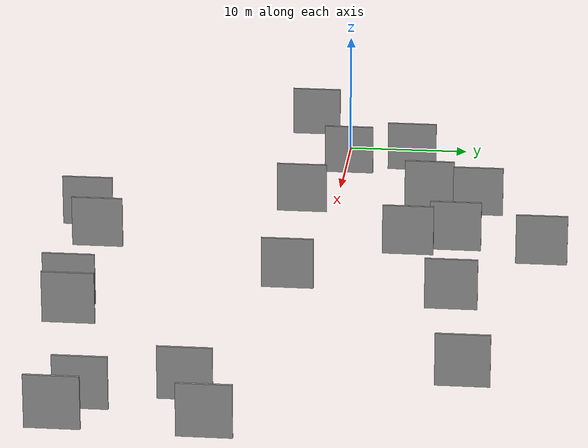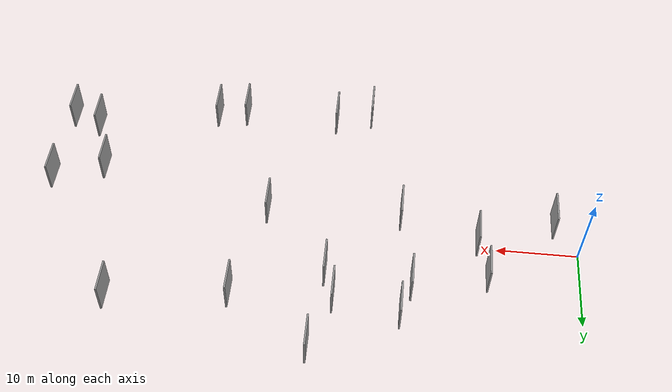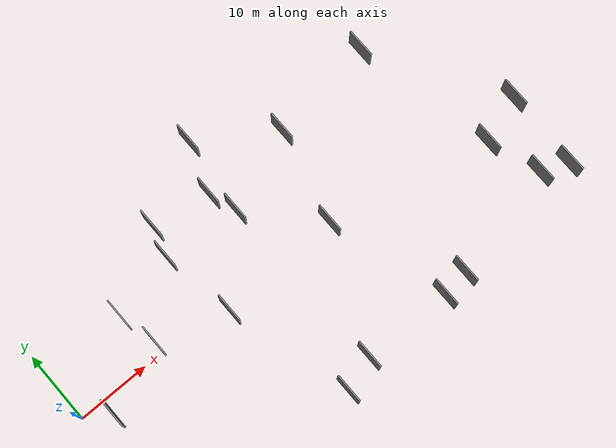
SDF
<sdf version="1.6">
 <world name="default">
  <scene>
   <sky><clouds><speed>12</speed></clouds></sky>
   <ambient>0.4 0.4 0.4 1</ambient>
   <background>0.7 0.7 0.7 1</background>
   <shadows>1</shadows>
  </scene>
  <gravity>0 0 -9.8066</gravity>
  <magnetic_field>6e-06 2.3e-05 -4.2e-05</magnetic_field>
  <physics default="0" name="default_physics" type="ode">
   <ode>
    <solver>
     <type>quick</type>
     <iters>10</iters>
     <sor>1.0</sor>
     <use_dynamic_moi_rescaling>0</use_dynamic_moi_rescaling>
    </solver>
    <constraints>
     <cfm>0</cfm>
     <erp>0.2</erp>
     <contact_max_correcting_vel>100</contact_max_correcting_vel>
     <contact_surface_layer>0.001</contact_surface_layer>
    </constraints>
   </ode>
   <max_step_size>0.004</max_step_size>
   <real_time_factor>1</real_time_factor>
   <real_time_update_rate>250</real_time_update_rate>
  </physics>
  <light name="sun" type="directional">
   <pose>0 0 10 0 0 0</pose>
   <diffuse>0.8 0.8 0.8 1</diffuse>
   <specular>0.2 0.2 0.2 1</specular>
   <attenuation>
    <range>1000</range>
    <constant>0.9</constant>
    <linear>0.01</linear>
    <quadratic>0.001</quadratic>
   </attenuation>
   <direction>-0.5 0.1 -0.9</direction>
  </light>
  <model name="grey_wall_1">
   <static>1</static>
   <pose>66.6942 -4.2332 2.5 0.000000 0.000000 1.570796</pose>
   <link name="link">
    <pose>0 0 2.00 0 0 0</pose>
    <collision name="collision"><geometry><box><size>4.00 0.2 4.00</size></box></geometry></collision>
    <visual name="visual">
     <cast_shadows>0</cast_shadows>
     <geometry><box><size>4.00 0.2 4.00</size></box></geometry>
     <material>
      <script>
       <uri>model://grey_wall/materials/scripts</uri>
       <uri>model://grey_wall/materials/textures</uri>
       <name>vrc/grey_wall</name>
      </script>
     </material>
    </visual>
   </link>
  </model>
  <model name="grey_wall_2">
   <static>1</static>
   <pose>11.5456 6.1222 2.5 0.000000 0.000000 1.570796</pose>
   <link name="link">
    <pose>0 0 2.00 0 0 0</pose>
    <collision name="collision"><geometry><box><size>4.00 0.2 4.00</size></box></geometry></collision>
    <visual name="visual">
     <cast_shadows>0</cast_shadows>
     <geometry><box><size>4.00 0.2 4.00</size></box></geometry>
     <material>
      <script>
       <uri>model://grey_wall/materials/scripts</uri>
       <uri>model://grey_wall/materials/textures</uri>
       <name>vrc/grey_wall</name>
      </script>
     </material>
    </visual>
   </link>
  </model>
  <model name="grey_wall_3">
   <static>1</static>
   <pose>62.7102 -13.5554 2.5 0.000000 0.000000 1.570796</pose>
   <link name="link">
    <pose>0 0 2.00 0 0 0</pose>
    <collision name="collision"><geometry><box><size>4.00 0.2 4.00</size></box></geometry></collision>
    <visual name="visual">
     <cast_shadows>0</cast_shadows>
     <geometry><box><size>4.00 0.2 4.00</size></box></geometry>
     <material>
      <script>
       <uri>model://grey_wall/materials/scripts</uri>
       <uri>model://grey_wall/materials/textures</uri>
       <name>vrc/grey_wall</name>
      </script>
     </material>
    </visual>
   </link>
  </model>
  <model name="grey_wall_4">
   <static>1</static>
   <pose>38.6337 -1.4164 2.5 0.000000 0.000000 1.570796</pose>
   <link name="link">
    <pose>0 0 2.00 0 0 0</pose>
    <collision name="collision"><geometry><box><size>4.00 0.2 4.00</size></box></geometry></collision>
    <visual name="visual">
     <cast_shadows>0</cast_shadows>
     <geometry><box><size>4.00 0.2 4.00</size></box></geometry>
     <material>
      <script>
       <uri>model://grey_wall/materials/scripts</uri>
       <uri>model://grey_wall/materials/textures</uri>
       <name>vrc/grey_wall</name>
      </script>
     </material>
    </visual>
   </link>
  </model>
  <model name="grey_wall_5">
   <static>1</static>
   <pose>21.5916 12.1789 2.5 0.000000 0.000000 1.570796</pose>
   <link name="link">
    <pose>0 0 2.00 0 0 0</pose>
    <collision name="collision"><geometry><box><size>4.00 0.2 4.00</size></box></geometry></collision>
    <visual name="visual">
     <cast_shadows>0</cast_shadows>
     <geometry><box><size>4.00 0.2 4.00</size></box></geometry>
     <material>
      <script>
       <uri>model://grey_wall/materials/scripts</uri>
       <uri>model://grey_wall/materials/textures</uri>
       <name>vrc/grey_wall</name>
      </script>
     </material>
    </visual>
   </link>
  </model>
  <model name="grey_wall_6">
   <static>1</static>
   <pose>31.4083 -17.2123 2.5 0.000000 0.000000 1.570796</pose>
   <link name="link">
    <pose>0 0 2.00 0 0 0</pose>
    <collision name="collision"><geometry><box><size>4.00 0.2 4.00</size></box></geometry></collision>
    <visual name="visual">
     <cast_shadows>0</cast_shadows>
     <geometry><box><size>4.00 0.2 4.00</size></box></geometry>
     <material>
      <script>
       <uri>model://grey_wall/materials/scripts</uri>
       <uri>model://grey_wall/materials/textures</uri>
       <name>vrc/grey_wall</name>
      </script>
     </material>
    </visual>
   </link>
  </model>
  <model name="grey_wall_7">
   <static>1</static>
   <pose>12.7582 0.9636 2.5 0.000000 0.000000 1.570796</pose>
   <link name="link">
    <pose>0 0 2.00 0 0 0</pose>
    <collision name="collision"><geometry><box><size>4.00 0.2 4.00</size></box></geometry></collision>
    <visual name="visual">
     <cast_shadows>0</cast_shadows>
     <geometry><box><size>4.00 0.2 4.00</size></box></geometry>
     <material>
      <script>
       <uri>model://grey_wall/materials/scripts</uri>
       <uri>model://grey_wall/materials/textures</uri>
       <name>vrc/grey_wall</name>
      </script>
     </material>
    </visual>
   </link>
  </model>
  <model name="grey_wall_8">
   <static>1</static>
   <pose>22.1565 -1.9897 2.5 0.000000 0.000000 1.570796</pose>
   <link name="link">
    <pose>0 0 2.00 0 0 0</pose>
    <collision name="collision"><geometry><box><size>4.00 0.2 4.00</size></box></geometry></collision>
    <visual name="visual">
     <cast_shadows>0</cast_shadows>
     <geometry><box><size>4.00 0.2 4.00</size></box></geometry>
     <material>
      <script>
       <uri>model://grey_wall/materials/scripts</uri>
       <uri>model://grey_wall/materials/textures</uri>
       <name>vrc/grey_wall</name>
      </script>
     </material>
    </visual>
   </link>
  </model>
  <model name="grey_wall_9">
   <static>1</static>
   <pose>56.1053 13.0224 2.5 0.000000 0.000000 1.570796</pose>
   <link name="link">
    <pose>0 0 2.00 0 0 0</pose>
    <collision name="collision"><geometry><box><size>4.00 0.2 4.00</size></box></geometry></collision>
    <visual name="visual">
     <cast_shadows>0</cast_shadows>
     <geometry><box><size>4.00 0.2 4.00</size></box></geometry>
     <material>
      <script>
       <uri>model://grey_wall/materials/scripts</uri>
       <uri>model://grey_wall/materials/textures</uri>
       <name>vrc/grey_wall</name>
      </script>
     </material>
    </visual>
   </link>
  </model>
  <model name="grey_wall_10">
   <static>1</static>
   <pose>41.6789 11.2818 2.5 0.000000 0.000000 1.570796</pose>
   <link name="link">
    <pose>0 0 2.00 0 0 0</pose>
    <collision name="collision"><geometry><box><size>4.00 0.2 4.00</size></box></geometry></collision>
    <visual name="visual">
     <cast_shadows>0</cast_shadows>
     <geometry><box><size>4.00 0.2 4.00</size></box></geometry>
     <material>
      <script>
       <uri>model://grey_wall/materials/scripts</uri>
       <uri>model://grey_wall/materials/textures</uri>
       <name>vrc/grey_wall</name>
      </script>
     </material>
    </visual>
   </link>
  </model>
  <model name="grey_wall_11">
   <static>1</static>
   <pose>26.8254 -18.6904 2.5 0.000000 0.000000 1.570796</pose>
   <link name="link">
    <pose>0 0 2.00 0 0 0</pose>
    <collision name="collision"><geometry><box><size>4.00 0.2 4.00</size></box></geometry></collision>
    <visual name="visual">
     <cast_shadows>0</cast_shadows>
     <geometry><box><size>4.00 0.2 4.00</size></box></geometry>
     <material>
      <script>
       <uri>model://grey_wall/materials/scripts</uri>
       <uri>model://grey_wall/materials/textures</uri>
       <name>vrc/grey_wall</name>
      </script>
     </material>
    </visual>
   </link>
  </model>
  <model name="grey_wall_12">
   <static>1</static>
   <pose>60.4012 -6.4137 2.5 0.000000 0.000000 1.570796</pose>
   <link name="link">
    <pose>0 0 2.00 0 0 0</pose>
    <collision name="collision"><geometry><box><size>4.00 0.2 4.00</size></box></geometry></collision>
    <visual name="visual">
     <cast_shadows>0</cast_shadows>
     <geometry><box><size>4.00 0.2 4.00</size></box></geometry>
     <material>
      <script>
       <uri>model://grey_wall/materials/scripts</uri>
       <uri>model://grey_wall/materials/textures</uri>
       <name>vrc/grey_wall</name>
      </script>
     </material>
    </visual>
   </link>
  </model>
  <model name="grey_wall_13">
   <static>1</static>
   <pose>29.5155 10.8695 2.5 0.000000 0.000000 1.570796</pose>
   <link name="link">
    <pose>0 0 2.00 0 0 0</pose>
    <collision name="collision"><geometry><box><size>4.00 0.2 4.00</size></box></geometry></collision>
    <visual name="visual">
     <cast_shadows>0</cast_shadows>
     <geometry><box><size>4.00 0.2 4.00</size></box></geometry>
     <material>
      <script>
       <uri>model://grey_wall/materials/scripts</uri>
       <uri>model://grey_wall/materials/textures</uri>
       <name>vrc/grey_wall</name>
      </script>
     </material>
    </visual>
   </link>
  </model>
  <model name="grey_wall_14">
   <static>1</static>
   <pose>66.3013 -14.9693 2.5 0.000000 0.000000 1.570796</pose>
   <link name="link">
    <pose>0 0 2.00 0 0 0</pose>
    <collision name="collision"><geometry><box><size>4.00 0.2 4.00</size></box></geometry></collision>
    <visual name="visual">
     <cast_shadows>0</cast_shadows>
     <geometry><box><size>4.00 0.2 4.00</size></box></geometry>
     <material>
      <script>
       <uri>model://grey_wall/materials/scripts</uri>
       <uri>model://grey_wall/materials/textures</uri>
       <name>vrc/grey_wall</name>
      </script>
     </material>
    </visual>
   </link>
  </model>
  <model name="grey_wall_15">
   <static>1</static>
   <pose>47.2140 -16.9472 2.5 0.000000 0.000000 1.570796</pose>
   <link name="link">
    <pose>0 0 2.00 0 0 0</pose>
    <collision name="collision"><geometry><box><size>4.00 0.2 4.00</size></box></geometry></collision>
    <visual name="visual">
     <cast_shadows>0</cast_shadows>
     <geometry><box><size>4.00 0.2 4.00</size></box></geometry>
     <material>
      <script>
       <uri>model://grey_wall/materials/scripts</uri>
       <uri>model://grey_wall/materials/textures</uri>
       <name>vrc/grey_wall</name>
      </script>
     </material>
    </visual>
   </link>
  </model>
  <model name="grey_wall_16">
   <static>1</static>
   <pose>31.8694 17.6939 2.5 0.000000 0.000000 1.570796</pose>
   <link name="link">
    <pose>0 0 2.00 0 0 0</pose>
    <collision name="collision"><geometry><box><size>4.00 0.2 4.00</size></box></geometry></collision>
    <visual name="visual">
     <cast_shadows>0</cast_shadows>
     <geometry><box><size>4.00 0.2 4.00</size></box></geometry>
     <material>
      <script>
       <uri>model://grey_wall/materials/scripts</uri>
       <uri>model://grey_wall/materials/textures</uri>
       <name>vrc/grey_wall</name>
      </script>
     </material>
    </visual>
   </link>
  </model>
  <model name="grey_wall_17">
   <static>1</static>
   <pose>43.4391 -17.5065 2.5 0.000000 0.000000 1.570796</pose>
   <link name="link">
    <pose>0 0 2.00 0 0 0</pose>
    <collision name="collision"><geometry><box><size>4.00 0.2 4.00</size></box></geometry></collision>
    <visual name="visual">
     <cast_shadows>0</cast_shadows>
     <geometry><box><size>4.00 0.2 4.00</size></box></geometry>
     <material>
      <script>
       <uri>model://grey_wall/materials/scripts</uri>
       <uri>model://grey_wall/materials/textures</uri>
       <name>vrc/grey_wall</name>
      </script>
     </material>
    </visual>
   </link>
  </model>
  <model name="grey_wall_18">
   <static>1</static>
   <pose>20.4695 8.1968 2.5 0.000000 0.000000 1.570796</pose>
   <link name="link">
    <pose>0 0 2.00 0 0 0</pose>
    <collision name="collision"><geometry><box><size>4.00 0.2 4.00</size></box></geometry></collision>
    <visual name="visual">
     <cast_shadows>0</cast_shadows>
     <geometry><box><size>4.00 0.2 4.00</size></box></geometry>
     <material>
      <script>
       <uri>model://grey_wall/materials/scripts</uri>
       <uri>model://grey_wall/materials/textures</uri>
       <name>vrc/grey_wall</name>
      </script>
     </material>
    </visual>
   </link>
  </model>
  <model name="grey_wall_19">
   <static>1</static>
   <pose>30.7529 7.2135 2.5 0.000000 0.000000 1.570796</pose>
   <link name="link">
    <pose>0 0 2.00 0 0 0</pose>
    <collision name="collision"><geometry><box><size>4.00 0.2 4.00</size></box></geometry></collision>
    <visual name="visual">
     <cast_shadows>0</cast_shadows>
     <geometry><box><size>4.00 0.2 4.00</size></box></geometry>
     <material>
      <script>
       <uri>model://grey_wall/materials/scripts</uri>
       <uri>model://grey_wall/materials/textures</uri>
       <name>vrc/grey_wall</name>
      </script>
     </material>
    </visual>
   </link>
  </model>
  <model name="grey_wall_20">
   <static>1</static>
   <pose>3.4874 -2.6246 2.5 0.000000 0.000000 1.570796</pose>
   <link name="link">
    <pose>0 0 2.00 0 0 0</pose>
    <collision name="collision"><geometry><box><size>4.00 0.2 4.00</size></box></geometry></collision>
    <visual name="visual">
     <cast_shadows>0</cast_shadows>
     <geometry><box><size>4.00 0.2 4.00</size></box></geometry>
     <material>
      <script>
       <uri>model://grey_wall/materials/scripts</uri>
       <uri>model://grey_wall/materials/textures</uri>
       <name>vrc/grey_wall</name>
      </script>
     </material>
    </visual>
   </link>
  </model>
 </world>
</sdf>
